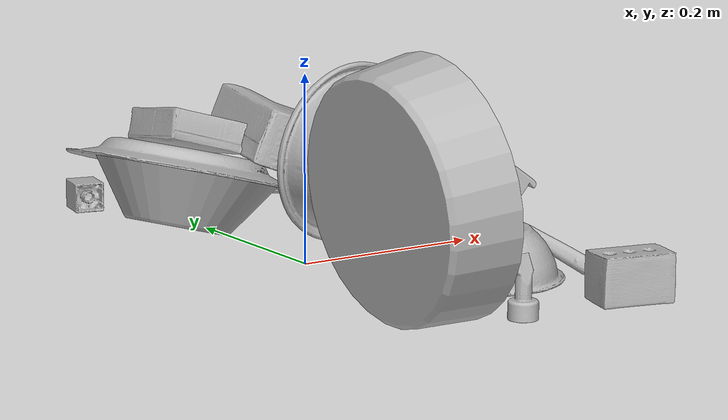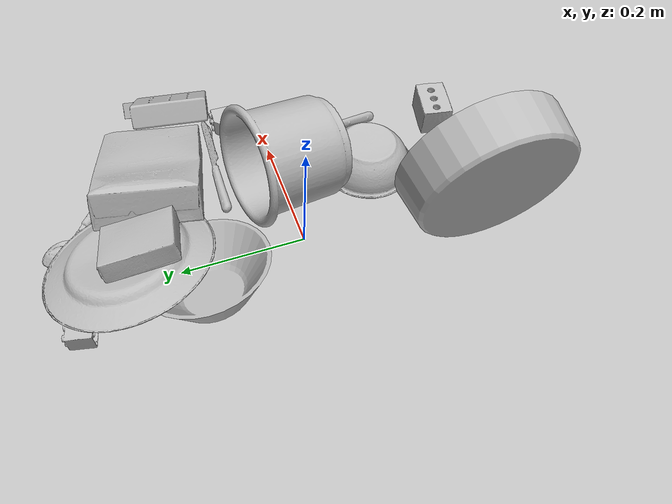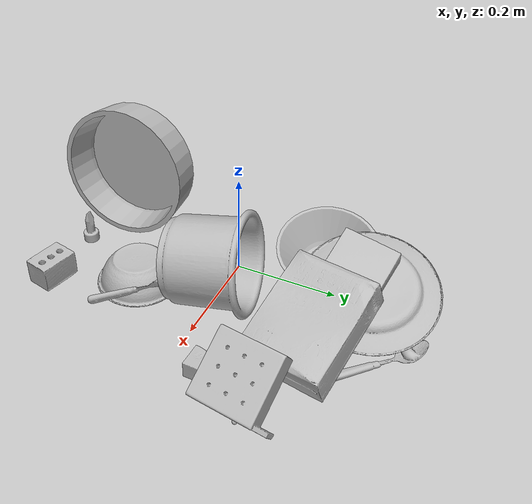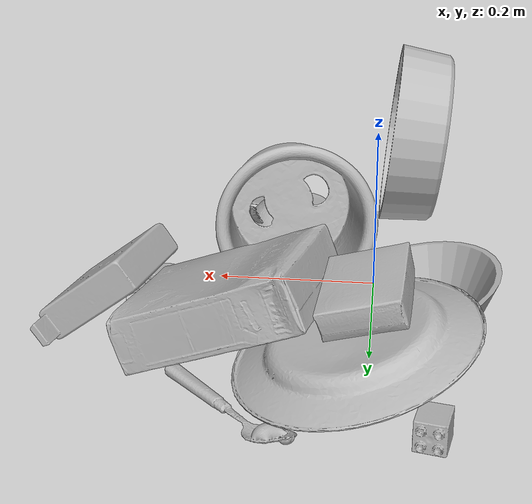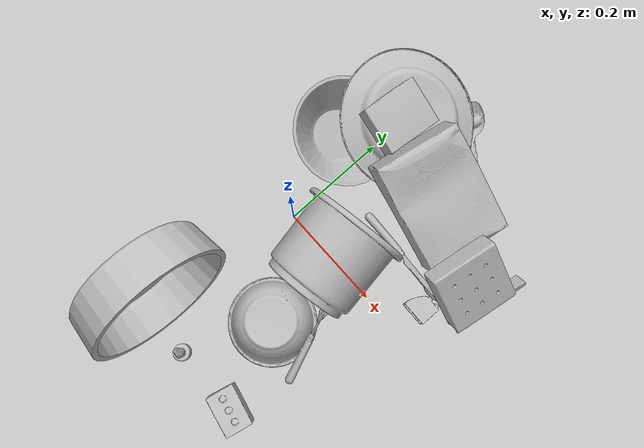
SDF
<sdf version="1.4">
  <world name="default">
    <light name="light1" type="point">
      <pose>0 0 1 0 0 0</pose>
      <diffuse>3 3 3 1</diffuse>
      <specular>3 3 3 1</specular>
    </light>
    <light name="light2" type="point">
      <pose>0 0.5 2 0 0 0</pose>
      <diffuse>1 1 1 1</diffuse>
      <specular>1 1 1 1</specular>
    </light>
    <light name="light3" type="point">
      <pose>0 0.5 2 0 0 0</pose>
      <diffuse>3 3 3 1</diffuse>
      <specular>3 3 3 1</specular>
    </light>
    <scene>
      <ambient>0.7 0.7 0.7</ambient>
    </scene>
    <model name="plate1">
      <link name="link_plate1">
        <collision name="default">
          <geometry>
            <mesh>
              <uri>model://pan_tefal/collision_meshes/collision.obj</uri>
              <scale>1.0 1.0 1.0</scale>
            </mesh>
          </geometry>
          <surface>
            <friction>
              <ode>
                <mu>0.5</mu>
                <mu2>0.5</mu2>
              </ode>
            </friction>
          <contact>
        <ode>
            <max_vel>0</max_vel>
            <min_depth>0.0001</min_depth>
            <kp>1e8</kp>
        </ode>
    </contact></surface>
        </collision>
        <visual name="default">
          <geometry>
            <mesh>
              <uri>model://pan_tefal/visual_meshes/visual.dae</uri>
              <scale>1.0 1.0 1.0</scale>
            </mesh>
          </geometry>
        </visual>
        <inertial>
          <mass>0.7050602436065674</mass>
          <pose>-0.00018002082651946694 3.279098018538207e-05 -0.008514933288097382 0.0008190340203057913 -0.0003301288692481796 -0.3318720847028622</pose>
          <inertia>
            <ixx>0.0048669963</ixx>
            <iyy>0.0048983735</iyy>
            <izz>0.008959204</izz>
            <ixy>0</ixy>
            <ixz>0</ixz>
            <iyz>0</iyz>
          </inertia>
        </inertial>
      </link>
      <pose>-0.0524459108710289 -0.26727765798568726 0.1282232403755188 0.7209407162844207 1.4283585834258972 0.7292478639662362</pose>
    </model>
    <model name="plate2">
      <link name="link_plate2">
        <collision name="default">
          <geometry>
            <mesh>
              <uri>model://plate/collision_meshes/collision.obj</uri>
              <scale>1.0 1.0 1.0</scale>
            </mesh>
          </geometry>
          <surface>
            <friction>
              <ode>
                <mu>0.5</mu>
                <mu2>0.5</mu2>
              </ode>
            </friction>
          <contact>
        <ode>
            <max_vel>0</max_vel>
            <min_depth>0.0001</min_depth>
            <kp>1e8</kp>
        </ode>
    </contact></surface>
        </collision>
        <visual name="default">
          <geometry>
            <mesh>
              <uri>model://plate/visual_meshes/visual.dae</uri>
              <scale>1.0 1.0 1.0</scale>
            </mesh>
          </geometry>
        </visual>
        <inertial>
          <mass>0.2442774623632431</mass>
          <pose>-0.0006044568726792932 0.0002782584633678198 -0.0010561984963715076 0.0022187778178748897 -0.0032254919076997847 0.45261061169843664</pose>
          <inertia>
            <ixx>0.0011427345</ixx>
            <iyy>0.001131805</iyy>
            <izz>0.002235018</izz>
            <ixy>0</ixy>
            <ixz>0</ixz>
            <iyz>0</iyz>
          </inertia>
        </inertial>
      </link>
      <pose>0.015048135071992874 0.2687515616416931 0.060210101306438446 -2.9194511647254124 0.18075277460515682 1.2479094369108519</pose>
    </model>
    <model name="bowl1">
      <link name="link_bowl1">
        <collision name="default">
          <geometry>
            <mesh>
              <uri>model://bowl_a/collision_meshes/collision.obj</uri>
              <scale>1.0 1.0 1.0</scale>
            </mesh>
          </geometry>
          <surface>
            <friction>
              <ode>
                <mu>0.5</mu>
                <mu2>0.5</mu2>
              </ode>
            </friction>
          <contact>
        <ode>
            <max_vel>0</max_vel>
            <min_depth>0.0001</min_depth>
            <kp>1e8</kp>
        </ode>
    </contact></surface>
        </collision>
        <visual name="default">
          <geometry>
            <mesh>
              <uri>model://bowl_a/visual_meshes/visual.dae</uri>
              <scale>1.0 1.0 1.0</scale>
            </mesh>
          </geometry>
        </visual>
        <inertial>
          <mass>0.4025156497955322</mass>
          <pose>0.00027867371682077646 4.731032458948903e-05 -0.0013765298062935472 -0.00098054011869292 -0.0010938175729232503 -0.19123339485915475</pose>
          <inertia>
            <ixx>0.0011459808</ixx>
            <iyy>0.0011530165</iyy>
            <izz>0.0020381706</izz>
            <ixy>0</ixy>
            <ixz>0</ixz>
            <iyz>0</iyz>
          </inertia>
        </inertial>
      </link>
      <pose>-0.051382940262556076 0.16333472728729248 0.04490081965923309 0.2225745760363697 -0.1861214631632064 2.5779563480389167</pose>
    </model>
    <model name="bowl2">
      <link name="link_bowl2">
        <collision name="default">
          <geometry>
            <mesh>
              <uri>model://bowl/collision_meshes/collision.obj</uri>
              <scale>1.0 1.0 1.0</scale>
            </mesh>
          </geometry>
          <surface>
            <friction>
              <ode>
                <mu>0.5</mu>
                <mu2>0.5</mu2>
              </ode>
            </friction>
          <contact>
        <ode>
            <max_vel>0</max_vel>
            <min_depth>0.0001</min_depth>
            <kp>1e8</kp>
        </ode>
    </contact></surface>
        </collision>
        <visual name="default">
          <geometry>
            <mesh>
              <uri>model://bowl/visual_meshes/visual.dae</uri>
              <scale>1.0 1.0 1.0</scale>
            </mesh>
          </geometry>
        </visual>
        <inertial>
          <mass>0.04694162309169769</mass>
          <pose>0.00020445318659767509 -0.001030211104080081 -0.0008042642730288208 -0.01576400215318024 0.014546874726031786 0.7140460761636136</pose>
          <inertia>
            <ixx>0.0001078286</ixx>
            <iyy>0.000105419305</iyy>
            <izz>0.00018140484</izz>
            <ixy>0</ixy>
            <ixz>0</ixz>
            <iyz>0</iyz>
          </inertia>
        </inertial>
      </link>
      <pose>0.11804934591054916 -0.1559264361858368 0.027247434481978416 -3.1327245899239684 0.0006763991107097783 0.6041323843143097</pose>
    </model>
    <model name="silverware1">
      <link name="link_silverware1">
        <collision name="default">
          <geometry>
            <mesh>
              <uri>model://spoon/collision_meshes/collision.obj</uri>
              <scale>1.0 1.0 1.0</scale>
            </mesh>
          </geometry>
          <surface>
            <friction>
              <ode>
                <mu>0.5</mu>
                <mu2>0.5</mu2>
              </ode>
            </friction>
          <contact>
        <ode>
            <max_vel>0</max_vel>
            <min_depth>0.0001</min_depth>
            <kp>1e8</kp>
        </ode>
    </contact></surface>
        </collision>
        <visual name="default">
          <geometry>
            <mesh>
              <uri>model://spoon/visual_meshes/visual.dae</uri>
              <scale>1.0 1.0 1.0</scale>
            </mesh>
          </geometry>
        </visual>
        <inertial>
          <mass>0.03710600733757019</mass>
          <pose>-0.005526318680495024 -0.0016034168656915426 -0.0007271650829352438 0.03521602429168162 -0.03906583039209626 0.006150612964611125</pose>
          <inertia>
            <ixx>2.0638956e-06</ixx>
            <iyy>0.00014118708</iyy>
            <izz>0.00014220492</izz>
            <ixy>0</ixy>
            <ixz>0</ixz>
            <iyz>0</iyz>
          </inertia>
        </inertial>
      </link>
      <pose>0.13345462083816528 0.3261873424053192 0.008496670983731747 -0.14931892678500097 0.02878605812365446 2.388307228850143</pose>
    </model>
    <model name="box1">
      <link name="link_box1">
        <collision name="default">
          <geometry>
            <mesh>
              <uri>model://cracker_box/collision_meshes/collision.obj</uri>
              <scale>1.0 1.0 1.0</scale>
            </mesh>
          </geometry>
          <surface>
            <friction>
              <ode>
                <mu>0.5</mu>
                <mu2>0.5</mu2>
              </ode>
            </friction>
          <contact>
        <ode>
            <max_vel>0</max_vel>
            <min_depth>0.0001</min_depth>
            <kp>1e8</kp>
        </ode>
    </contact></surface>
        </collision>
        <visual name="default">
          <geometry>
            <mesh>
              <uri>model://cracker_box/visual_meshes/visual.dae</uri>
              <scale>1.0 1.0 1.0</scale>
            </mesh>
          </geometry>
        </visual>
        <inertial>
          <mass>2.252173662185669</mass>
          <pose>0.0009464137838222086 0.0002543425071053207 -0.0017029535956680775 -0.000316207513865998 -0.011106489600465836 0.0025467954670329632</pose>
          <inertia>
            <ixx>0.0057285246</ixx>
            <iyy>0.00945892</iyy>
            <izz>0.013498746</izz>
            <ixy>0</ixy>
            <ixz>0</ixz>
            <iyz>0</iyz>
          </inertia>
        </inertial>
      </link>
      <pose>0.1533670425415039 0.20718932151794434 0.06934241950511932 0.0075914281594193275 0.38593248057003 -0.1766060423718289</pose>
    </model>
    <model name="box2">
      <link name="link_box2">
        <collision name="default">
          <geometry>
            <mesh>
              <uri>model://pudding_box/collision_meshes/collision.obj</uri>
              <scale>1.0 1.0 1.0</scale>
            </mesh>
          </geometry>
          <surface>
            <friction>
              <ode>
                <mu>0.5</mu>
                <mu2>0.5</mu2>
              </ode>
            </friction>
          <contact>
        <ode>
            <max_vel>0</max_vel>
            <min_depth>0.0001</min_depth>
            <kp>1e8</kp>
        </ode>
    </contact></surface>
        </collision>
        <visual name="default">
          <geometry>
            <mesh>
              <uri>model://pudding_box/visual_meshes/visual.dae</uri>
              <scale>1.0 1.0 1.0</scale>
            </mesh>
          </geometry>
        </visual>
        <inertial>
          <mass>0.38795164227485657</mass>
          <pose>0.0004894821904599667 0.0008067885646596551 -0.0005188827635720372 0.005213102258195884 -0.006603798723254801 0.020079825158131615</pose>
          <inertia>
            <ixx>0.00043855933</ixx>
            <iyy>0.00029506587</iyy>
            <izz>0.0006476475</izz>
            <ixy>0</ixy>
            <ixz>0</ixz>
            <iyz>0</iyz>
          </inertia>
        </inertial>
      </link>
      <pose>0.003618219867348671 0.24467623233795166 0.09998444467782974 0.16080928565767755 -0.27185707020821076 3.0182684803578845</pose>
    </model>
    <model name="cup1">
      <link name="link_cup1">
        <collision name="default">
          <geometry>
            <mesh>
              <uri>model://i_cups/collision_meshes/collision.obj</uri>
              <scale>2.0 2.0 2.0</scale>
            </mesh>
          </geometry>
          <surface>
            <friction>
              <ode>
                <mu>0.5</mu>
                <mu2>0.5</mu2>
              </ode>
            </friction>
          <contact>
        <ode>
            <max_vel>0</max_vel>
            <min_depth>0.0001</min_depth>
            <kp>1e8</kp>
        </ode>
    </contact></surface>
        </collision>
        <visual name="default">
          <geometry>
            <mesh>
              <uri>model://i_cups/visual_meshes/visual.dae</uri>
              <scale>2.0 2.0 2.0</scale>
            </mesh>
          </geometry>
        </visual>
        <inertial>
          <mass>0.8781275153160095</mass>
          <pose>0.00022480404004454613 0.0003359464171808213 -0.0017158013070002198 -0.028983801808433914 -0.03987279960401974 -0.34589629987983705</pose>
          <inertia>
            <ixx>0.004863122</ixx>
            <iyy>0.004905971</iyy>
            <izz>0.005435325</izz>
            <ixy>0</ixy>
            <ixz>0</ixz>
            <iyz>0</iyz>
          </inertia>
        </inertial>
      </link>
      <pose>0.1045801043510437 -0.00577201135456562 0.08939958363771439 1.4463694116293555 -0.08455016980547718 -2.965255898491412</pose>
    </model>
    <model name="silverware2">
      <link name="link_silverware2">
        <collision name="default">
          <geometry>
            <mesh>
              <uri>model://fork/collision_meshes/collision.obj</uri>
              <scale>1.0 1.0 1.0</scale>
            </mesh>
          </geometry>
          <surface>
            <friction>
              <ode>
                <mu>0.5</mu>
                <mu2>0.5</mu2>
              </ode>
            </friction>
          <contact>
        <ode>
            <max_vel>0</max_vel>
            <min_depth>0.0001</min_depth>
            <kp>1e8</kp>
        </ode>
    </contact></surface>
        </collision>
        <visual name="default">
          <geometry>
            <mesh>
              <uri>model://fork/visual_meshes/visual.dae</uri>
              <scale>1.0 1.0 1.0</scale>
            </mesh>
          </geometry>
        </visual>
        <inertial>
          <mass>0.027322283014655113</mass>
          <pose>-0.02957003377377987 0.0004658822435885668 0.0003218860656488687 -0.013551502868568713 -0.01097783467120204 0.01445389601768567</pose>
          <inertia>
            <ixx>9.578007e-07</ixx>
            <iyy>7.133063e-05</iyy>
            <izz>7.175903e-05</izz>
            <ixy>0</ixy>
            <ixz>0</ixz>
            <iyz>0</iyz>
          </inertia>
        </inertial>
      </link>
      <pose>0.1829068958759308 -0.12057622522115707 0.04077409207820892 2.0456272327122327 -0.35916593948390013 1.9527149709971445</pose>
    </model>
    <model name="silverware3">
      <link name="link_silverware3">
        <collision name="default">
          <geometry>
            <mesh>
              <uri>model://knife/collision_meshes/collision.obj</uri>
              <scale>1.0 1.0 1.0</scale>
            </mesh>
          </geometry>
          <surface>
            <friction>
              <ode>
                <mu>0.5</mu>
                <mu2>0.5</mu2>
              </ode>
            </friction>
          <contact>
        <ode>
            <max_vel>0</max_vel>
            <min_depth>0.0001</min_depth>
            <kp>1e8</kp>
        </ode>
    </contact></surface>
        </collision>
        <visual name="default">
          <geometry>
            <mesh>
              <uri>model://knife/visual_meshes/visual.dae</uri>
              <scale>1.0 1.0 1.0</scale>
            </mesh>
          </geometry>
        </visual>
        <inertial>
          <mass>0.036400385200977325</mass>
          <pose>-0.02378525584936142 0.0015275126788765192 5.0620175898075104e-05 0.07305876248658423 0.017248417790611748 -0.007409819472147862</pose>
          <inertia>
            <ixx>1.0331904e-06</ixx>
            <iyy>0.00013984439</iyy>
            <izz>0.00014017712</izz>
            <ixy>0</ixy>
            <ixz>0</ixz>
            <iyz>0</iyz>
          </inertia>
        </inertial>
      </link>
      <pose>0.19291134178638458 0.09743503481149673 0.008919012732803822 -0.8984547497626919 0.004168840856529139 -0.03988821886427961</pose>
    </model>
    <model name="toy1">
      <link name="link_toy1">
        <collision name="default">
          <geometry>
            <mesh>
              <uri>model://d_lego_duplo/collision_meshes/collision.obj</uri>
              <scale>1.0 1.0 1.0</scale>
            </mesh>
          </geometry>
          <surface>
            <friction>
              <ode>
                <mu>0.5</mu>
                <mu2>0.5</mu2>
              </ode>
            </friction>
          <contact>
        <ode>
            <max_vel>0</max_vel>
            <min_depth>0.0001</min_depth>
            <kp>1e8</kp>
        </ode>
    </contact></surface>
        </collision>
        <visual name="default">
          <geometry>
            <mesh>
              <uri>model://d_lego_duplo/visual_meshes/visual.dae</uri>
              <scale>1.0 1.0 1.0</scale>
            </mesh>
          </geometry>
        </visual>
        <inertial>
          <mass>0.060466669499874115</mass>
          <pose>0.002830563113093376 0.00016366162162739784 0.0008589806384406984 0.08010949306805684 -0.3835523000845375 0.0010296676643477064</pose>
          <inertia>
            <ixx>1.1705457e-05</ixx>
            <iyy>1.6613216e-05</iyy>
            <izz>1.6021117e-05</izz>
            <ixy>0</ixy>
            <ixz>0</ixz>
            <iyz>0</iyz>
          </inertia>
        </inertial>
      </link>
      <pose>0.27571091055870056 0.06150176376104355 0.016392895951867104 -1.5668329729015493 -0.004547757239852861 -0.022279725117208223</pose>
    </model>
    <model name="toy2">
      <link name="link_toy2">
        <collision name="default">
          <geometry>
            <mesh>
              <uri>model://b_lego_duplo/collision_meshes/collision.obj</uri>
              <scale>1.0 1.0 1.0</scale>
            </mesh>
          </geometry>
          <surface>
            <friction>
              <ode>
                <mu>0.5</mu>
                <mu2>0.5</mu2>
              </ode>
            </friction>
          <contact>
        <ode>
            <max_vel>0</max_vel>
            <min_depth>0.0001</min_depth>
            <kp>1e8</kp>
        </ode>
    </contact></surface>
        </collision>
        <visual name="default">
          <geometry>
            <mesh>
              <uri>model://b_lego_duplo/visual_meshes/visual.dae</uri>
              <scale>1.0 1.0 1.0</scale>
            </mesh>
          </geometry>
        </visual>
        <inertial>
          <mass>0.030077241361141205</mass>
          <pose>-0.00011053079651901498 -9.15232340048533e-06 0.0019294286612421274 -0.037494862621914114 -0.026354003688684128 0.4518993950044185</pose>
          <inertia>
            <ixx>6.155532e-06</ixx>
            <iyy>6.196912e-06</iyy>
            <izz>5.4843786e-06</izz>
            <ixy>0</ixy>
            <ixz>0</ixz>
            <iyz>0</iyz>
          </inertia>
        </inertial>
      </link>
      <pose>-0.06277498602867126 0.35695362091064453 0.01615232229232788 -3.1209992427956053 1.5624528090614795 -1.7554263680021809</pose>
    </model>
    <model name="toy3">
      <link name="link_toy3">
        <collision name="default">
          <geometry>
            <mesh>
              <uri>model://nine_hole_peg_test/collision_meshes/collision.obj</uri>
              <scale>1.0 1.0 1.0</scale>
            </mesh>
          </geometry>
          <surface>
            <friction>
              <ode>
                <mu>0.5</mu>
                <mu2>0.5</mu2>
              </ode>
            </friction>
          <contact>
        <ode>
            <max_vel>0</max_vel>
            <min_depth>0.0001</min_depth>
            <kp>1e8</kp>
        </ode>
    </contact></surface>
        </collision>
        <visual name="default">
          <geometry>
            <mesh>
              <uri>model://nine_hole_peg_test/visual_meshes/visual.dae</uri>
              <scale>1.0 1.0 1.0</scale>
            </mesh>
          </geometry>
        </visual>
        <inertial>
          <mass>0.9411391019821167</mass>
          <pose>-0.0046173869632184505 -0.009647615253925323 2.646069333422929e-05 -0.0014666795036135398 0.0007194176186147546 -0.6342417663820423</pose>
          <inertia>
            <ixx>0.0014716258</ixx>
            <iyy>0.0013740414</iyy>
            <izz>0.0025787223</izz>
            <ixy>0</ixy>
            <ixz>0</ixz>
            <iyz>0</iyz>
          </inertia>
        </inertial>
      </link>
      <pose>0.3073771595954895 0.1557578444480896 0.049931492656469345 0.0038407893994928865 0.6470496617118744 -0.14677526609567867</pose>
    </model>
    <model name="toy4">
      <link name="link_toy4">
        <collision name="default">
          <geometry>
            <mesh>
              <uri>model://foam_brick/collision_meshes/collision.obj</uri>
              <scale>1.0 1.0 1.0</scale>
            </mesh>
          </geometry>
          <surface>
            <friction>
              <ode>
                <mu>0.5</mu>
                <mu2>0.5</mu2>
              </ode>
            </friction>
          <contact>
        <ode>
            <max_vel>0</max_vel>
            <min_depth>0.0001</min_depth>
            <kp>1e8</kp>
        </ode>
    </contact></surface>
        </collision>
        <visual name="default">
          <geometry>
            <mesh>
              <uri>model://foam_brick/visual_meshes/visual.dae</uri>
              <scale>1.0 1.0 1.0</scale>
            </mesh>
          </geometry>
        </visual>
        <inertial>
          <mass>0.1527709662914276</mass>
          <pose>-0.00025224717683158815 0.0003458428254816681 -0.00025321016437374055 -0.29402015796081304 0.017274438268763303 -0.0007449889855682301</pose>
          <inertia>
            <ixx>6.673321e-05</ixx>
            <iyy>0.00010654301</iyy>
            <izz>0.00010789704</izz>
            <ixy>0</ixy>
            <ixz>0</ixz>
            <iyz>0</iyz>
          </inertia>
        </inertial>
      </link>
      <pose>0.18313832581043243 -0.30873817205429077 0.025917524471879005 0.013817554928378956 0.00427686138234686 2.9240636490383203</pose>
    </model>
    <model name="toy5">
      <link name="link_toy5">
        <collision name="default">
          <geometry>
            <mesh>
              <uri>model://e_toy_airplane/collision_meshes/collision.obj</uri>
              <scale>1.0 1.0 1.0</scale>
            </mesh>
          </geometry>
          <surface>
            <friction>
              <ode>
                <mu>0.5</mu>
                <mu2>0.5</mu2>
              </ode>
            </friction>
          <contact>
        <ode>
            <max_vel>0</max_vel>
            <min_depth>0.0001</min_depth>
            <kp>1e8</kp>
        </ode>
    </contact></surface>
        </collision>
        <visual name="default">
          <geometry>
            <mesh>
              <uri>model://e_toy_airplane/visual_meshes/visual.dae</uri>
              <scale>1.0 1.0 1.0</scale>
            </mesh>
          </geometry>
        </visual>
        <inertial>
          <mass>0.01976589486002922</mass>
          <pose>0.00011740453192032874 -2.2483010980067775e-05 -0.011187207885086536 0.005518504435964777 0.009228288570086122 0.15041432989491213</pose>
          <inertia>
            <ixx>6.0327766e-06</ixx>
            <iyy>5.971064e-06</iyy>
            <izz>1.813087e-06</izz>
            <ixy>0</ixy>
            <ixz>0</ixz>
            <iyz>0</iyz>
          </inertia>
        </inertial>
      </link>
      <pose>0.05164814367890358 -0.310960978269577 0.03321199491620064 6.715902271957016e-05 -9.50027001322446e-05 -1.7801744449213919</pose>
    </model>
  <physics type="ode">
      <max_contacts>50</max_contacts>
      <ode>
        <solver>
          <type>quick</type>
          <iters>75</iters>
        </solver>
        <constraints>
          <contact_max_correcting_vel>0</contact_max_correcting_vel>
          <contact_surface_layer>0</contact_surface_layer>
        </constraints>
      </ode>
    </physics></world>
</sdf>
